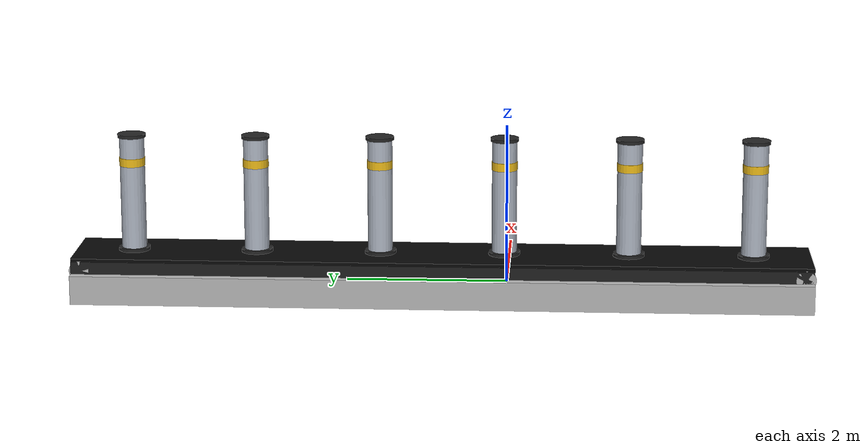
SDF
<sdf version="1.6">
 <world name="test">
  <gravity>0 0 -9.8</gravity>
  <physics default="0" name="default_physics" type="ode">
   <max_step_size>0.001</max_step_size>
   <real_time_factor>1</real_time_factor>
   <real_time_update_rate>1000</real_time_update_rate>
  </physics>
  <light name="Warehouse_CeilingLight_003" type="point">
   <pose>0 0 9 0 0 0</pose>
   <diffuse>0.5 0.5 0.5 1</diffuse>
   <specular>0.2 0.2 0.2 1</specular>
   <attenuation>
    <range>80</range>
    <constant>0.3</constant>
    <linear>0.01</linear>
    <quadratic>0.001</quadratic>
   </attenuation>
   <direction>0.1 0.1 -1</direction>
  </light>
  <model name="conveyor_belt">
   <link name="belt_base">
    <pose>-1.1 0.75 0.485 0 0 0</pose>
    <inertial>
     <mass>20</mass>
     <inertia><ixx>13.3</ixx><iyy>1.7</iyy><izz>13.5</izz><ixy>0</ixy><ixz>0</ixz><iyz>0</iyz></inertia>
    </inertial>
    <collision name="collision"><geometry><box><size>1.0 8.9 0.25</size></box></geometry></collision>
    <visual name="visual">
     <geometry><box><size>1.0 8.9 0.25</size></box></geometry>
     <material>
      <ambient>0.08 0.08 0.08 1</ambient>
      <diffuse>0.12 0.12 0.12 1</diffuse>
      <specular>0.1 0.1 0.1 1</specular>
     </material>
    </visual>
   </link>
   <link name="belt_surface">
    <pose>-1.1 0.75 0.63 0 0 0</pose>
    <inertial>
     <mass>5</mass>
     <inertia><ixx>33.0</ixx><iyy>0.42</iyy><izz>33.4</izz><ixy>0</ixy><ixz>0</ixz><iyz>0</iyz></inertia>
    </inertial>
    <collision name="collision">
     <geometry><box><size>1.0 8.9 0.04</size></box></geometry>
     <surface><friction><ode><mu>1.0</mu><mu2>1.0</mu2></ode></friction></surface>
    </collision>
    <visual name="visual">
     <geometry><box><size>1.0 8.9 0.04</size></box></geometry>
     <material>
      <ambient>0.02 0.02 0.02 1</ambient>
      <diffuse>0.03 0.03 0.03 1</diffuse>
      <specular>0.05 0.05 0.05 1</specular>
     </material>
    </visual>
   </link>
   <link name="roller_top">
    <pose>-1.1 5.1 0.5 0 1.5708 0</pose>
    <inertial>
     <mass>1</mass>
     <inertia><ixx>0.02</ixx><iyy>0.02</iyy><izz>0.0072</izz><ixy>0</ixy><ixz>0</ixz><iyz>0</iyz></inertia>
    </inertial>
    <visual name="visual">
     <geometry><cylinder><radius>0.12</radius><length>1.0</length></cylinder></geometry>
    </visual>
   </link>
   <link name="roller_bottom">
    <pose>-1.1 -3.6 0.5 0 1.5708 0</pose>
    <inertial>
     <mass>1</mass>
     <inertia><ixx>0.02</ixx><iyy>0.02</iyy><izz>0.0072</izz><ixy>0</ixy><ixz>0</ixz><iyz>0</iyz></inertia>
    </inertial>
    <visual name="visual">
     <geometry><cylinder><radius>0.12</radius><length>1.0</length></cylinder></geometry>
    </visual>
   </link>
   <link name="left_support">
    <pose>-1.65 0.75 0.285 0 0 0</pose>
    <visual name="visual"><geometry><box><size>0.12 8.9 0.35</size></box></geometry></visual>
   </link>
   <link name="right_support">
    <pose>-0.55 0.75 0.285 0 0 0</pose>
    <visual name="visual"><geometry><box><size>0.12 8.9 0.35</size></box></geometry></visual>
   </link>
   <joint name="base_world" type="fixed"><parent>world</parent><child>belt_base</child></joint>
   <joint name="surface_base" type="fixed"><parent>belt_base</parent><child>belt_surface</child></joint>
   <joint name="roller_top_base" type="fixed"><parent>belt_base</parent><child>roller_top</child></joint>
   <joint name="roller_bottom_base" type="fixed"><parent>belt_base</parent><child>roller_bottom</child></joint>
   <joint name="left_base" type="fixed"><parent>belt_base</parent><child>left_support</child></joint>
   <joint name="right_base" type="fixed"><parent>belt_base</parent><child>right_support</child></joint>
   <plugin filename="libignition-gazebo-track-controller-system.so" name="ignition::gazebo::systems::TrackController">
    <link>belt_surface</link>
    <track_orientation>0 0 -1.5708</track_orientation>
    <velocity_topic>/conveyor_belt/cmd_vel</velocity_topic>
    <debug>1</debug>
   </plugin>
  </model>
  <model name="tubos">
   <static>true</static>
   <link name="tubo_1">
    <pose>-1.1 -3.0 0 0 0 0</pose>
    <collision name="colision">
     <pose>0 0 1.35 0 0 0</pose>
     <geometry><cylinder><radius>0.15</radius><length>1.4</length></cylinder></geometry>
    </collision>
    <visual name="cuerpo">
     <pose>0 0 1.35 0 0 0</pose>
     <geometry><cylinder><radius>0.15</radius><length>1.4</length></cylinder></geometry>
     <material>
      <ambient>0.55 0.58 0.62 1</ambient>
      <diffuse>0.7 0.73 0.78 1</diffuse>
      <specular>0.9 0.9 0.95 1</specular>
     </material>
    </visual>
    <visual name="banda">
     <pose>0 0 1.75 0 0 0</pose>
     <geometry><cylinder><radius>0.155</radius><length>0.1</length></cylinder></geometry>
     <material>
      <ambient>0.9 0.7 0.05 1</ambient>
      <diffuse>0.95 0.75 0.1 1</diffuse>
      <specular>0.3 0.3 0.3 1</specular>
     </material>
    </visual>
    <visual name="tapa">
     <pose>0 0 2.07 0 0 0</pose>
     <geometry><cylinder><radius>0.17</radius><length>0.04</length></cylinder></geometry>
     <material>
      <ambient>0.1 0.1 0.1 1</ambient>
      <diffuse>0.15 0.15 0.15 1</diffuse>
      <specular>0.4 0.4 0.4 1</specular>
     </material>
    </visual>
    <visual name="base">
     <pose>0 0 0.67 0 0 0</pose>
     <geometry><cylinder><radius>0.19</radius><length>0.04</length></cylinder></geometry>
     <material>
      <ambient>0.1 0.1 0.1 1</ambient>
      <diffuse>0.15 0.15 0.15 1</diffuse>
      <specular>0.4 0.4 0.4 1</specular>
     </material>
    </visual>
   </link>
   <link name="tubo_2">
    <pose>-1.1 -1.5 0 0 0 0</pose>
    <collision name="colision">
     <pose>0 0 1.35 0 0 0</pose>
     <geometry><cylinder><radius>0.15</radius><length>1.4</length></cylinder></geometry>
    </collision>
    <visual name="cuerpo">
     <pose>0 0 1.35 0 0 0</pose>
     <geometry><cylinder><radius>0.15</radius><length>1.4</length></cylinder></geometry>
     <material>
      <ambient>0.55 0.58 0.62 1</ambient>
      <diffuse>0.7 0.73 0.78 1</diffuse>
      <specular>0.9 0.9 0.95 1</specular>
     </material>
    </visual>
    <visual name="banda">
     <pose>0 0 1.75 0 0 0</pose>
     <geometry><cylinder><radius>0.155</radius><length>0.1</length></cylinder></geometry>
     <material>
      <ambient>0.9 0.7 0.05 1</ambient>
      <diffuse>0.95 0.75 0.1 1</diffuse>
      <specular>0.3 0.3 0.3 1</specular>
     </material>
    </visual>
    <visual name="tapa">
     <pose>0 0 2.07 0 0 0</pose>
     <geometry><cylinder><radius>0.17</radius><length>0.04</length></cylinder></geometry>
     <material>
      <ambient>0.1 0.1 0.1 1</ambient>
      <diffuse>0.15 0.15 0.15 1</diffuse>
      <specular>0.4 0.4 0.4 1</specular>
     </material>
    </visual>
    <visual name="base">
     <pose>0 0 0.67 0 0 0</pose>
     <geometry><cylinder><radius>0.19</radius><length>0.04</length></cylinder></geometry>
     <material>
      <ambient>0.1 0.1 0.1 1</ambient>
      <diffuse>0.15 0.15 0.15 1</diffuse>
      <specular>0.4 0.4 0.4 1</specular>
     </material>
    </visual>
   </link>
   <link name="tubo_3">
    <pose>-1.1 0.0 0 0 0 0</pose>
    <collision name="colision">
     <pose>0 0 1.35 0 0 0</pose>
     <geometry><cylinder><radius>0.15</radius><length>1.4</length></cylinder></geometry>
    </collision>
    <visual name="cuerpo">
     <pose>0 0 1.35 0 0 0</pose>
     <geometry><cylinder><radius>0.15</radius><length>1.4</length></cylinder></geometry>
     <material>
      <ambient>0.55 0.58 0.62 1</ambient>
      <diffuse>0.7 0.73 0.78 1</diffuse>
      <specular>0.9 0.9 0.95 1</specular>
     </material>
    </visual>
    <visual name="banda">
     <pose>0 0 1.75 0 0 0</pose>
     <geometry><cylinder><radius>0.155</radius><length>0.1</length></cylinder></geometry>
     <material>
      <ambient>0.9 0.7 0.05 1</ambient>
      <diffuse>0.95 0.75 0.1 1</diffuse>
      <specular>0.3 0.3 0.3 1</specular>
     </material>
    </visual>
    <visual name="tapa">
     <pose>0 0 2.07 0 0 0</pose>
     <geometry><cylinder><radius>0.17</radius><length>0.04</length></cylinder></geometry>
     <material>
      <ambient>0.1 0.1 0.1 1</ambient>
      <diffuse>0.15 0.15 0.15 1</diffuse>
      <specular>0.4 0.4 0.4 1</specular>
     </material>
    </visual>
    <visual name="base">
     <pose>0 0 0.67 0 0 0</pose>
     <geometry><cylinder><radius>0.19</radius><length>0.04</length></cylinder></geometry>
     <material>
      <ambient>0.1 0.1 0.1 1</ambient>
      <diffuse>0.15 0.15 0.15 1</diffuse>
      <specular>0.4 0.4 0.4 1</specular>
     </material>
    </visual>
   </link>
   <link name="tubo_4">
    <pose>-1.1 1.5 0 0 0 0</pose>
    <collision name="colision">
     <pose>0 0 1.35 0 0 0</pose>
     <geometry><cylinder><radius>0.15</radius><length>1.4</length></cylinder></geometry>
    </collision>
    <visual name="cuerpo">
     <pose>0 0 1.35 0 0 0</pose>
     <geometry><cylinder><radius>0.15</radius><length>1.4</length></cylinder></geometry>
     <material>
      <ambient>0.55 0.58 0.62 1</ambient>
      <diffuse>0.7 0.73 0.78 1</diffuse>
      <specular>0.9 0.9 0.95 1</specular>
     </material>
    </visual>
    <visual name="banda">
     <pose>0 0 1.75 0 0 0</pose>
     <geometry><cylinder><radius>0.155</radius><length>0.1</length></cylinder></geometry>
     <material>
      <ambient>0.9 0.7 0.05 1</ambient>
      <diffuse>0.95 0.75 0.1 1</diffuse>
      <specular>0.3 0.3 0.3 1</specular>
     </material>
    </visual>
    <visual name="tapa">
     <pose>0 0 2.07 0 0 0</pose>
     <geometry><cylinder><radius>0.17</radius><length>0.04</length></cylinder></geometry>
     <material>
      <ambient>0.1 0.1 0.1 1</ambient>
      <diffuse>0.15 0.15 0.15 1</diffuse>
      <specular>0.4 0.4 0.4 1</specular>
     </material>
    </visual>
    <visual name="base">
     <pose>0 0 0.67 0 0 0</pose>
     <geometry><cylinder><radius>0.19</radius><length>0.04</length></cylinder></geometry>
     <material>
      <ambient>0.1 0.1 0.1 1</ambient>
      <diffuse>0.15 0.15 0.15 1</diffuse>
      <specular>0.4 0.4 0.4 1</specular>
     </material>
    </visual>
   </link>
   <link name="tubo_5">
    <pose>-1.1 3.0 0 0 0 0</pose>
    <collision name="colision">
     <pose>0 0 1.35 0 0 0</pose>
     <geometry><cylinder><radius>0.15</radius><length>1.4</length></cylinder></geometry>
    </collision>
    <visual name="cuerpo">
     <pose>0 0 1.35 0 0 0</pose>
     <geometry><cylinder><radius>0.15</radius><length>1.4</length></cylinder></geometry>
     <material>
      <ambient>0.55 0.58 0.62 1</ambient>
      <diffuse>0.7 0.73 0.78 1</diffuse>
      <specular>0.9 0.9 0.95 1</specular>
     </material>
    </visual>
    <visual name="banda">
     <pose>0 0 1.75 0 0 0</pose>
     <geometry><cylinder><radius>0.155</radius><length>0.1</length></cylinder></geometry>
     <material>
      <ambient>0.9 0.7 0.05 1</ambient>
      <diffuse>0.95 0.75 0.1 1</diffuse>
      <specular>0.3 0.3 0.3 1</specular>
     </material>
    </visual>
    <visual name="tapa">
     <pose>0 0 2.07 0 0 0</pose>
     <geometry><cylinder><radius>0.17</radius><length>0.04</length></cylinder></geometry>
     <material>
      <ambient>0.1 0.1 0.1 1</ambient>
      <diffuse>0.15 0.15 0.15 1</diffuse>
      <specular>0.4 0.4 0.4 1</specular>
     </material>
    </visual>
    <visual name="base">
     <pose>0 0 0.67 0 0 0</pose>
     <geometry><cylinder><radius>0.19</radius><length>0.04</length></cylinder></geometry>
     <material>
      <ambient>0.1 0.1 0.1 1</ambient>
      <diffuse>0.15 0.15 0.15 1</diffuse>
      <specular>0.4 0.4 0.4 1</specular>
     </material>
    </visual>
   </link>
   <link name="tubo_6">
    <pose>-1.1 4.5 0 0 0 0</pose>
    <collision name="colision">
     <pose>0 0 1.35 0 0 0</pose>
     <geometry><cylinder><radius>0.15</radius><length>1.4</length></cylinder></geometry>
    </collision>
    <visual name="cuerpo">
     <pose>0 0 1.35 0 0 0</pose>
     <geometry><cylinder><radius>0.15</radius><length>1.4</length></cylinder></geometry>
     <material>
      <ambient>0.55 0.58 0.62 1</ambient>
      <diffuse>0.7 0.73 0.78 1</diffuse>
      <specular>0.9 0.9 0.95 1</specular>
     </material>
    </visual>
    <visual name="banda">
     <pose>0 0 1.75 0 0 0</pose>
     <geometry><cylinder><radius>0.155</radius><length>0.1</length></cylinder></geometry>
     <material>
      <ambient>0.9 0.7 0.05 1</ambient>
      <diffuse>0.95 0.75 0.1 1</diffuse>
      <specular>0.3 0.3 0.3 1</specular>
     </material>
    </visual>
    <visual name="tapa">
     <pose>0 0 2.07 0 0 0</pose>
     <geometry><cylinder><radius>0.17</radius><length>0.04</length></cylinder></geometry>
     <material>
      <ambient>0.1 0.1 0.1 1</ambient>
      <diffuse>0.15 0.15 0.15 1</diffuse>
      <specular>0.4 0.4 0.4 1</specular>
     </material>
    </visual>
    <visual name="base">
     <pose>0 0 0.67 0 0 0</pose>
     <geometry><cylinder><radius>0.19</radius><length>0.04</length></cylinder></geometry>
     <material>
      <ambient>0.1 0.1 0.1 1</ambient>
      <diffuse>0.15 0.15 0.15 1</diffuse>
      <specular>0.4 0.4 0.4 1</specular>
     </material>
    </visual>
   </link>
  </model>
 </world>
</sdf>
